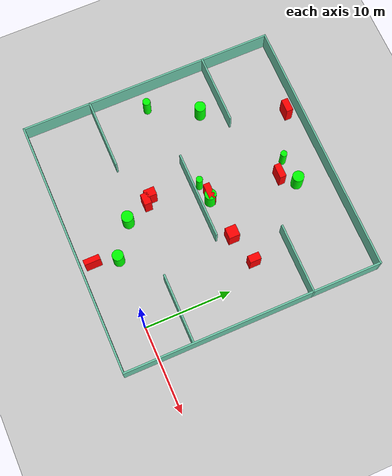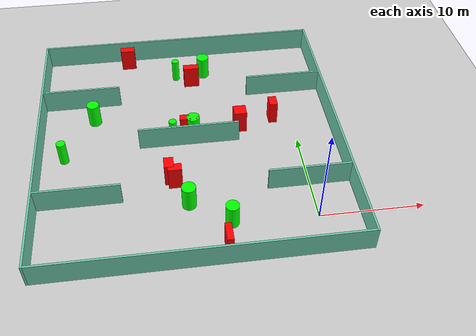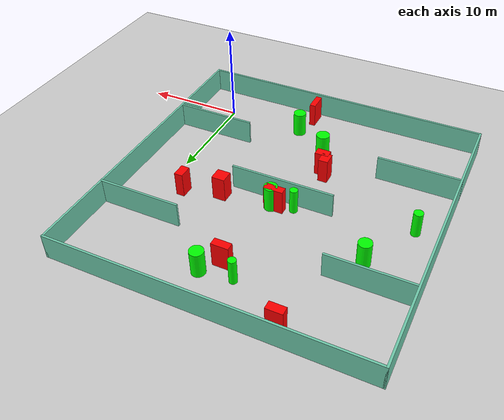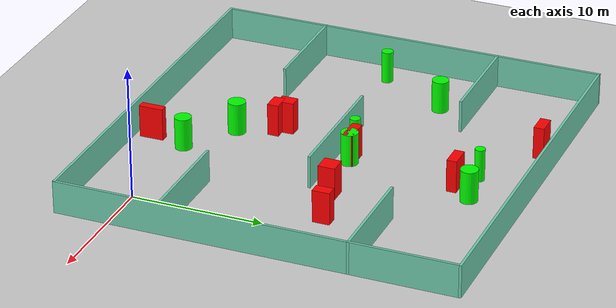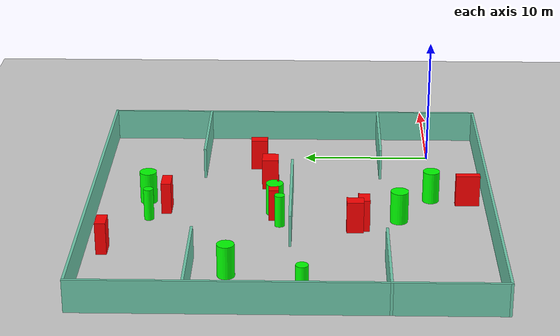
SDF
<sdf version="1.7">
 <world name="default">
  <light name="sun" type="directional">
   <pose>0 0 10 0 -0 0</pose>
   <diffuse>0.8 0.8 0.8 1</diffuse>
   <specular>0.2 0.2 0.2 1</specular>
   <attenuation>
    <range>1000</range>
    <constant>0.9</constant>
    <linear>0.01</linear>
    <quadratic>0.001</quadratic>
   </attenuation>
   <direction>-0.5 0.1 -0.9</direction>
   <spot><inner_angle>0</inner_angle><outer_angle>0</outer_angle><falloff>0</falloff></spot>
  </light>
  <model name="ground_plane">
   <static>1</static>
   <link name="link">
    <collision name="collision">
     <geometry><plane><normal>0 0 1</normal><size>100 100</size></plane></geometry>
     <surface>
      <contact><collide_bitmask>65535</collide_bitmask></contact>
      <friction><ode><mu>100</mu><mu2>50</mu2></ode></friction>
     </surface>
    </collision>
    <visual name="visual">
     <cast_shadows>0</cast_shadows>
     <geometry><plane><normal>0 0 1</normal><size>100 100</size></plane></geometry>
     <material>
      <script><uri>file://media/materials/scripts/gazebo.material</uri><name>Gazebo/Grey</name></script>
     </material>
    </visual>
   </link>
  </model>
  <gravity>0 0 -9.8</gravity>
  <magnetic_field>6e-06 2.3e-05 -4.2e-05</magnetic_field>
  <atmosphere type="adiabatic"/>
  <physics type="ode">
   <max_step_size>0.001</max_step_size>
   <real_time_factor>1</real_time_factor>
   <real_time_update_rate>1000</real_time_update_rate>
  </physics>
  <scene><ambient>0.4 0.4 0.4 1</ambient><background>0.7 0.7 0.7 1</background><shadows>1</shadows></scene>
  <spherical_coordinates>
   <surface_model>EARTH_WGS84</surface_model>
   <latitude_deg>0</latitude_deg>
   <longitude_deg>0</longitude_deg>
   <elevation>0</elevation>
   <heading_deg>0</heading_deg>
  </spherical_coordinates>
  <model name="my_base_walls">
   <link name="Wall_10">
    <collision name="Wall_10_Collision">
     <geometry><box><size>8.2 0.2 2.5</size></box></geometry>
     <pose>0 0 1.25 0 -0 0</pose>
    </collision>
    <visual name="Wall_10_Visual">
     <pose>0 0 1.25 0 -0 0</pose>
     <geometry><box><size>8.2 0.2 2.5</size></box></geometry>
     <material>
      <script><uri>file://media/materials/scripts/gazebo.material</uri><name>Gazebo/Grey</name></script>
      <ambient>0.435294 0.796078 0.67451 1</ambient>
     </material>
     <meta><layer>0</layer></meta>
    </visual>
    <pose>-11 -7 0 0 -0 0</pose>
   </link>
   <link name="Wall_12">
    <collision name="Wall_12_Collision">
     <geometry><box><size>8.2 0.2 2.5</size></box></geometry>
     <pose>0 0 1.25 0 -0 0</pose>
    </collision>
    <visual name="Wall_12_Visual">
     <pose>0 0 1.25 0 -0 0</pose>
     <geometry><box><size>8.2 0.2 2.5</size></box></geometry>
     <material>
      <script><uri>file://media/materials/scripts/gazebo.material</uri><name>Gazebo/Grey</name></script>
      <ambient>0.435294 0.796078 0.67451 1</ambient>
     </material>
     <meta><layer>0</layer></meta>
    </visual>
    <pose>-11 7 0 0 -0 0</pose>
   </link>
   <link name="Wall_14">
    <collision name="Wall_14_Collision">
     <geometry><box><size>8.2 0.2 2.5</size></box></geometry>
     <pose>0 0 1.25 0 -0 0</pose>
    </collision>
    <visual name="Wall_14_Visual">
     <pose>0 0 1.25 0 -0 0</pose>
     <geometry><box><size>8.2 0.2 2.5</size></box></geometry>
     <material>
      <script><uri>file://media/materials/scripts/gazebo.material</uri><name>Gazebo/Grey</name></script>
      <ambient>0.435294 0.796078 0.67451 1</ambient>
     </material>
     <meta><layer>0</layer></meta>
    </visual>
    <pose>11 7 0 0 -0 3.14159</pose>
   </link>
   <link name="Wall_16">
    <collision name="Wall_16_Collision">
     <geometry><box><size>10.2 0.2 2.5</size></box></geometry>
     <pose>0 0 1.25 0 -0 0</pose>
    </collision>
    <visual name="Wall_16_Visual">
     <pose>0 0 1.25 0 -0 0</pose>
     <geometry><box><size>10.2 0.2 2.5</size></box></geometry>
     <material>
      <script><uri>file://media/materials/scripts/gazebo.material</uri><name>Gazebo/Grey</name></script>
      <ambient>0.435294 0.796078 0.67451 1</ambient>
     </material>
     <meta><layer>0</layer></meta>
    </visual>
    <pose>0 0 0 0 -0 3.14159</pose>
   </link>
   <link name="Wall_2">
    <collision name="Wall_2_Collision">
     <geometry><box><size>30.2 0.2 2.5</size></box></geometry>
     <pose>0 0 1.25 0 -0 0</pose>
    </collision>
    <visual name="Wall_2_Visual">
     <pose>0 0 1.25 0 -0 0</pose>
     <geometry><box><size>30.2 0.2 2.5</size></box></geometry>
     <material>
      <script><uri>file://media/materials/scripts/gazebo.material</uri><name>Gazebo/Grey</name></script>
      <ambient>0.435294 0.796078 0.67451 1</ambient>
     </material>
     <meta><layer>0</layer></meta>
    </visual>
    <pose>0 -15 0 0 -0 3.14159</pose>
   </link>
   <link name="Wall_3">
    <collision name="Wall_3_Collision">
     <geometry><box><size>30.2 0.2 2.5</size></box></geometry>
     <pose>0 0 1.25 0 -0 0</pose>
    </collision>
    <visual name="Wall_3_Visual">
     <pose>0 0 1.25 0 -0 0</pose>
     <geometry><box><size>30.2 0.2 2.5</size></box></geometry>
     <material>
      <script><uri>file://media/materials/scripts/gazebo.material</uri><name>Gazebo/Grey</name></script>
      <ambient>0.435294 0.796078 0.67451 1</ambient>
     </material>
     <meta><layer>0</layer></meta>
    </visual>
    <pose>-15 0 0 0 -0 1.5708</pose>
   </link>
   <link name="Wall_4">
    <collision name="Wall_4_Collision">
     <geometry><box><size>30.2 0.2 2.5</size></box></geometry>
     <pose>0 0 1.25 0 -0 0</pose>
    </collision>
    <visual name="Wall_4_Visual">
     <pose>0 0 1.25 0 -0 0</pose>
     <geometry><box><size>30.2 0.2 2.5</size></box></geometry>
     <material>
      <script><uri>file://media/materials/scripts/gazebo.material</uri><name>Gazebo/Grey</name></script>
      <ambient>0.435294 0.796078 0.67451 1</ambient>
     </material>
     <meta><layer>0</layer></meta>
    </visual>
    <pose>0 15 0 0 -0 0</pose>
   </link>
   <link name="Wall_6">
    <collision name="Wall_6_Collision">
     <geometry><box><size>30.2 0.2 2.5</size></box></geometry>
     <pose>0 0 1.25 0 -0 0</pose>
    </collision>
    <visual name="Wall_6_Visual">
     <pose>0 0 1.25 0 -0 0</pose>
     <geometry><box><size>30.2 0.2 2.5</size></box></geometry>
     <material>
      <script><uri>file://media/materials/scripts/gazebo.material</uri><name>Gazebo/Grey</name></script>
      <ambient>0.435294 0.796078 0.67451 1</ambient>
     </material>
     <meta><layer>0</layer></meta>
    </visual>
    <pose>15 0 0 0 -0 1.5708</pose>
   </link>
   <link name="Wall_8">
    <collision name="Wall_8_Collision">
     <geometry><box><size>8.2 0.2 2.5</size></box></geometry>
     <pose>0 0 1.25 0 -0 0</pose>
    </collision>
    <visual name="Wall_8_Visual">
     <pose>0 0 1.25 0 -0 0</pose>
     <geometry><box><size>8.2 0.2 2.5</size></box></geometry>
     <material>
      <script><uri>file://media/materials/scripts/gazebo.material</uri><name>Gazebo/Grey</name></script>
      <ambient>0.435294 0.796078 0.67451 1</ambient>
     </material>
     <meta><layer>0</layer></meta>
    </visual>
    <pose>11 -7 0 0 -0 3.14159</pose>
   </link>
   <static>1</static>
   <pose>-11 11 0 0 -0 0</pose>
  </model>
  <model name="cylinder1">
   <static>1</static>
   <link name="link">
    <inertial>
     <mass>1</mass>
     <inertia><ixx>0.5</ixx><ixy>0</ixy><ixz>0</ixz><iyy>0.5</iyy><iyz>0</iyz><izz>1</izz></inertia>
    </inertial>
    <collision name="collision">
     <geometry><cylinder><radius>0.3881931340240268</radius><length>2.5</length></cylinder></geometry>
    </collision>
    <visual name="visual">
     <geometry><cylinder><radius>0.3881931340240268</radius><length>2.5</length></cylinder></geometry>
     <material>
      <ambient>0 1 0 1</ambient>
      <diffuse>0 1 0 1</diffuse>
      <specular>0.1 0.1 0.1 1</specular>
      <emissive>0 0 0 0</emissive>
     </material>
    </visual>
   </link>
   <pose>-12.577792385298073 11.832648921686989 1.25 0 0 0</pose>
  </model>
  <model name="cylinder2">
   <static>1</static>
   <link name="link">
    <inertial>
     <mass>1</mass>
     <inertia><ixx>0.5</ixx><ixy>0</ixy><ixz>0</ixz><iyy>0.5</iyy><iyz>0</iyz><izz>1</izz></inertia>
    </inertial>
    <collision name="collision">
     <geometry><cylinder><radius>0.6611298583325715</radius><length>2.5</length></cylinder></geometry>
    </collision>
    <visual name="visual">
     <geometry><cylinder><radius>0.6611298583325715</radius><length>2.5</length></cylinder></geometry>
     <material>
      <ambient>0 1 0 1</ambient>
      <diffuse>0 1 0 1</diffuse>
      <specular>0.1 0.1 0.1 1</specular>
      <emissive>0 0 0 0</emissive>
     </material>
    </visual>
   </link>
   <pose>-10.468258099828383 12.257932116905103 1.25 0 0 0</pose>
  </model>
  <model name="cylinder3">
   <static>1</static>
   <link name="link">
    <inertial>
     <mass>1</mass>
     <inertia><ixx>0.5</ixx><ixy>0</ixy><ixz>0</ixz><iyy>0.5</iyy><iyz>0</iyz><izz>1</izz></inertia>
    </inertial>
    <collision name="collision">
     <geometry><cylinder><radius>0.6780837849357566</radius><length>2.5</length></cylinder></geometry>
    </collision>
    <visual name="visual">
     <geometry><cylinder><radius>0.6780837849357566</radius><length>2.5</length></cylinder></geometry>
     <material>
      <ambient>0 1 0 1</ambient>
      <diffuse>0 1 0 1</diffuse>
      <specular>0.1 0.1 0.1 1</specular>
      <emissive>0 0 0 0</emissive>
     </material>
    </visual>
   </link>
   <pose>-11.740574329423483 2.827183348035497 1.25 0 0 0</pose>
  </model>
  <model name="cylinder4">
   <static>1</static>
   <link name="link">
    <inertial>
     <mass>1</mass>
     <inertia><ixx>0.5</ixx><ixy>0</ixy><ixz>0</ixz><iyy>0.5</iyy><iyz>0</iyz><izz>1</izz></inertia>
    </inertial>
    <collision name="collision">
     <geometry><cylinder><radius>0.6582041034129307</radius><length>2.5</length></cylinder></geometry>
    </collision>
    <visual name="visual">
     <geometry><cylinder><radius>0.6582041034129307</radius><length>2.5</length></cylinder></geometry>
     <material>
      <ambient>0 1 0 1</ambient>
      <diffuse>0 1 0 1</diffuse>
      <specular>0.1 0.1 0.1 1</specular>
      <emissive>0 0 0 0</emissive>
     </material>
    </visual>
   </link>
   <pose>-8.513230168710116 22.083587684589045 1.25 0 0 0</pose>
  </model>
  <model name="cylinder5">
   <static>1</static>
   <link name="link">
    <inertial>
     <mass>1</mass>
     <inertia><ixx>0.5</ixx><ixy>0</ixy><ixz>0</ixz><iyy>0.5</iyy><iyz>0</iyz><izz>1</izz></inertia>
    </inertial>
    <collision name="collision">
     <geometry><cylinder><radius>0.638768662561795</radius><length>2.5</length></cylinder></geometry>
    </collision>
    <visual name="visual">
     <geometry><cylinder><radius>0.638768662561795</radius><length>2.5</length></cylinder></geometry>
     <material>
      <ambient>0 1 0 1</ambient>
      <diffuse>0 1 0 1</diffuse>
      <specular>0.1 0.1 0.1 1</specular>
      <emissive>0 0 0 0</emissive>
     </material>
    </visual>
   </link>
   <pose>-20.64693803117605 15.415800559753322 1.25 0 0 0</pose>
  </model>
  <model name="cylinder6">
   <static>1</static>
   <link name="link">
    <inertial>
     <mass>1</mass>
     <inertia><ixx>0.5</ixx><ixy>0</ixy><ixz>0</ixz><iyy>0.5</iyy><iyz>0</iyz><izz>1</izz></inertia>
    </inertial>
    <collision name="collision">
     <geometry><cylinder><radius>0.6383978554424428</radius><length>2.5</length></cylinder></geometry>
    </collision>
    <visual name="visual">
     <geometry><cylinder><radius>0.6383978554424428</radius><length>2.5</length></cylinder></geometry>
     <material>
      <ambient>0 1 0 1</ambient>
      <diffuse>0 1 0 1</diffuse>
      <specular>0.1 0.1 0.1 1</specular>
      <emissive>0 0 0 0</emissive>
     </material>
    </visual>
   </link>
   <pose>-8.056993850823583 0.2135468172958941 1.25 0 0 0</pose>
  </model>
  <model name="cylinder7">
   <static>1</static>
   <link name="link">
    <inertial>
     <mass>1</mass>
     <inertia><ixx>0.5</ixx><ixy>0</ixy><ixz>0</ixz><iyy>0.5</iyy><iyz>0</iyz><izz>1</izz></inertia>
    </inertial>
    <collision name="collision">
     <geometry><cylinder><radius>0.44780898721934304</radius><length>2.5</length></cylinder></geometry>
    </collision>
    <visual name="visual">
     <geometry><cylinder><radius>0.44780898721934304</radius><length>2.5</length></cylinder></geometry>
     <material>
      <ambient>0 1 0 1</ambient>
      <diffuse>0 1 0 1</diffuse>
      <specular>0.1 0.1 0.1 1</specular>
      <emissive>0 0 0 0</emissive>
     </material>
    </visual>
   </link>
   <pose>-23.626697313222245 10.027782442516287 1.25 0 0 0</pose>
  </model>
  <model name="cylinder8">
   <static>1</static>
   <link name="link">
    <inertial>
     <mass>1</mass>
     <inertia><ixx>0.5</ixx><ixy>0</ixy><ixz>0</ixz><iyy>0.5</iyy><iyz>0</iyz><izz>1</izz></inertia>
    </inertial>
    <collision name="collision">
     <geometry><cylinder><radius>0.3755958494058746</radius><length>2.5</length></cylinder></geometry>
    </collision>
    <visual name="visual">
     <geometry><cylinder><radius>0.3755958494058746</radius><length>2.5</length></cylinder></geometry>
     <material>
      <ambient>0 1 0 1</ambient>
      <diffuse>0 1 0 1</diffuse>
      <specular>0.1 0.1 0.1 1</specular>
      <emissive>0 0 0 0</emissive>
     </material>
    </visual>
   </link>
   <pose>-11.624531517043069 21.760365404321483 1.25 0 0 0</pose>
  </model>
  <model name="box1">
   <static>1</static>
   <link name="link">
    <inertial>
     <mass>1</mass>
     <inertia><ixx>0.083</ixx><ixy>0</ixy><ixz>0</ixz><iyy>0.083</iyy><iyz>0</iyz><izz>0.083</izz></inertia>
    </inertial>
    <collision name="collision">
     <geometry><box><size>0.8358012045424501 1.3091703216127446 2.5</size></box></geometry>
    </collision>
    <visual name="visual">
     <geometry><box><size>0.8358012045424501 1.3091703216127446 2.5</size></box></geometry>
     <material>
      <ambient>1 0 0 1</ambient>
      <diffuse>1 0 0 1</diffuse>
      <specular>0.1 0.1 0.1 1</specular>
      <emissive>0 0 0 0</emissive>
     </material>
    </visual>
    <sensor name="my_contact" type="contact">
     <contact><collision>box_collision</collision><topic>__default_topic__</topic></contact>
    </sensor>
   </link>
   <pose>-1.954742873460642 13.715516582032418 1.25 0 0 0</pose>
  </model>
  <model name="box2">
   <static>1</static>
   <link name="link">
    <inertial>
     <mass>1</mass>
     <inertia><ixx>0.083</ixx><ixy>0</ixy><ixz>0</ixz><iyy>0.083</iyy><iyz>0</iyz><izz>0.083</izz></inertia>
    </inertial>
    <collision name="collision">
     <geometry><box><size>1.6591712329817367 0.7553270519881852 2.5</size></box></geometry>
    </collision>
    <visual name="visual">
     <geometry><box><size>1.6591712329817367 0.7553270519881852 2.5</size></box></geometry>
     <material>
      <ambient>1 0 0 1</ambient>
      <diffuse>1 0 0 1</diffuse>
      <specular>0.1 0.1 0.1 1</specular>
      <emissive>0 0 0 0</emissive>
     </material>
    </visual>
    <sensor name="my_contact" type="contact">
     <contact><collision>box_collision</collision><topic>__default_topic__</topic></contact>
    </sensor>
   </link>
   <pose>-9.961203888964153 20.521969890548483 1.25 0 0 0</pose>
  </model>
  <model name="box3">
   <static>1</static>
   <link name="link">
    <inertial>
     <mass>1</mass>
     <inertia><ixx>0.083</ixx><ixy>0</ixy><ixz>0</ixz><iyy>0.083</iyy><iyz>0</iyz><izz>0.083</izz></inertia>
    </inertial>
    <collision name="collision">
     <geometry><box><size>1.3441103697899184 0.8636356986025249 2.5</size></box></geometry>
    </collision>
    <visual name="visual">
     <geometry><box><size>1.3441103697899184 0.8636356986025249 2.5</size></box></geometry>
     <material>
      <ambient>1 0 0 1</ambient>
      <diffuse>1 0 0 1</diffuse>
      <specular>0.1 0.1 0.1 1</specular>
      <emissive>0 0 0 0</emissive>
     </material>
    </visual>
    <sensor name="my_contact" type="contact">
     <contact><collision>box_collision</collision><topic>__default_topic__</topic></contact>
    </sensor>
   </link>
   <pose>-12.835737843723308 5.513185365041025 1.25 0 0 0</pose>
  </model>
  <model name="box4">
   <static>1</static>
   <link name="link">
    <inertial>
     <mass>1</mass>
     <inertia><ixx>0.083</ixx><ixy>0</ixy><ixz>0</ixz><iyy>0.083</iyy><iyz>0</iyz><izz>0.083</izz></inertia>
    </inertial>
    <collision name="collision">
     <geometry><box><size>1.2939523567423712 1.2709034235464818 2.5</size></box></geometry>
    </collision>
    <visual name="visual">
     <geometry><box><size>1.2939523567423712 1.2709034235464818 2.5</size></box></geometry>
     <material>
      <ambient>1 0 0 1</ambient>
      <diffuse>1 0 0 1</diffuse>
      <specular>0.1 0.1 0.1 1</specular>
      <emissive>0 0 0 0</emissive>
     </material>
    </visual>
    <sensor name="my_contact" type="contact">
     <contact><collision>box_collision</collision><topic>__default_topic__</topic></contact>
    </sensor>
   </link>
   <pose>-5.580005179628255 12.727123544436871 1.25 0 0 0</pose>
  </model>
  <model name="box5">
   <static>1</static>
   <link name="link">
    <inertial>
     <mass>1</mass>
     <inertia><ixx>0.083</ixx><ixy>0</ixy><ixz>0</ixz><iyy>0.083</iyy><iyz>0</iyz><izz>0.083</izz></inertia>
    </inertial>
    <collision name="collision">
     <geometry><box><size>1.9047591423509989 0.7483400683359065 2.5</size></box></geometry>
    </collision>
    <visual name="visual">
     <geometry><box><size>1.9047591423509989 0.7483400683359065 2.5</size></box></geometry>
     <material>
      <ambient>1 0 0 1</ambient>
      <diffuse>1 0 0 1</diffuse>
      <specular>0.1 0.1 0.1 1</specular>
      <emissive>0 0 0 0</emissive>
     </material>
    </visual>
    <sensor name="my_contact" type="contact">
     <contact><collision>box_collision</collision><topic>__default_topic__</topic></contact>
    </sensor>
   </link>
   <pose>-10.8646379864973 12.313161819713477 1.25 0 0 0</pose>
  </model>
  <model name="box6">
   <static>1</static>
   <link name="link">
    <inertial>
     <mass>1</mass>
     <inertia><ixx>0.083</ixx><ixy>0</ixy><ixz>0</ixz><iyy>0.083</iyy><iyz>0</iyz><izz>0.083</izz></inertia>
    </inertial>
    <collision name="collision">
     <geometry><box><size>0.6145483707763146 1.8434192822619238 2.5</size></box></geometry>
    </collision>
    <visual name="visual">
     <geometry><box><size>0.6145483707763146 1.8434192822619238 2.5</size></box></geometry>
     <material>
      <ambient>1 0 0 1</ambient>
      <diffuse>1 0 0 1</diffuse>
      <specular>0.1 0.1 0.1 1</specular>
      <emissive>0 0 0 0</emissive>
     </material>
    </visual>
    <sensor name="my_contact" type="contact">
     <contact><collision>box_collision</collision><topic>__default_topic__</topic></contact>
    </sensor>
   </link>
   <pose>-8.711532014677088 -2.5510000883435797 1.25 0 0 0</pose>
  </model>
  <model name="box7">
   <static>1</static>
   <link name="link">
    <inertial>
     <mass>1</mass>
     <inertia><ixx>0.083</ixx><ixy>0</ixy><ixz>0</ixz><iyy>0.083</iyy><iyz>0</iyz><izz>0.083</izz></inertia>
    </inertial>
    <collision name="collision">
     <geometry><box><size>1.535685269114145 0.7909042985899734 2.5</size></box></geometry>
    </collision>
    <visual name="visual">
     <geometry><box><size>1.535685269114145 0.7909042985899734 2.5</size></box></geometry>
     <material>
      <ambient>1 0 0 1</ambient>
      <diffuse>1 0 0 1</diffuse>
      <specular>0.1 0.1 0.1 1</specular>
      <emissive>0 0 0 0</emissive>
     </material>
    </visual>
    <sensor name="my_contact" type="contact">
     <contact><collision>box_collision</collision><topic>__default_topic__</topic></contact>
    </sensor>
   </link>
   <pose>-16.881906090009462 24.630702942613794 1.25 0 0 0</pose>
  </model>
  <model name="box8">
   <static>1</static>
   <link name="link">
    <inertial>
     <mass>1</mass>
     <inertia><ixx>0.083</ixx><ixy>0</ixy><ixz>0</ixz><iyy>0.083</iyy><iyz>0</iyz><izz>0.083</izz></inertia>
    </inertial>
    <collision name="collision">
     <geometry><box><size>0.9498155270255244 1.2716829551656983 2.5</size></box></geometry>
    </collision>
    <visual name="visual">
     <geometry><box><size>0.9498155270255244 1.2716829551656983 2.5</size></box></geometry>
     <material>
      <ambient>1 0 0 1</ambient>
      <diffuse>1 0 0 1</diffuse>
      <specular>0.1 0.1 0.1 1</specular>
      <emissive>0 0 0 0</emissive>
     </material>
    </visual>
    <sensor name="my_contact" type="contact">
     <contact><collision>box_collision</collision><topic>__default_topic__</topic></contact>
    </sensor>
   </link>
   <pose>-13.353981579379658 6.189419285469597 1.25 0 0 0</pose>
  </model>
 </world>
</sdf>
